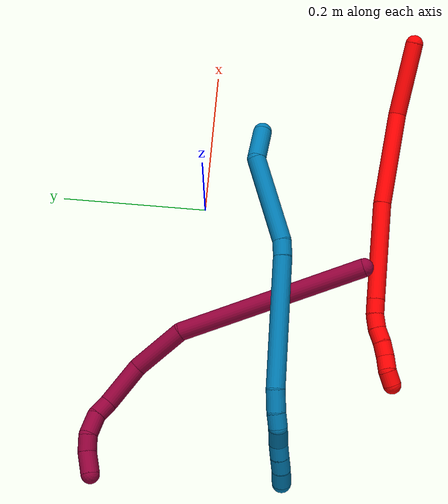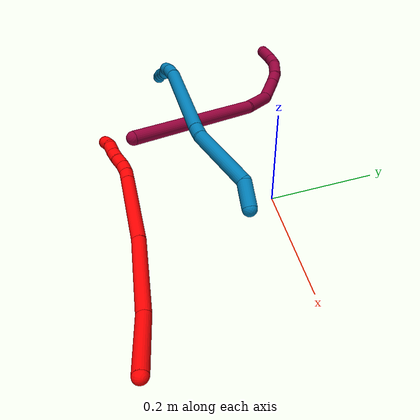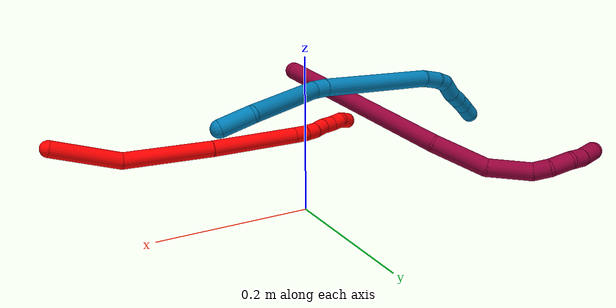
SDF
<sdf version="1.7">
 <world name="default">
  <model name="photoneo_s_sensor">
   <static>1</static>
   <pose>0 0 2 1.57079 1.57079 3.14159</pose>
   <link name="link">
    <inertial><mass>0.1</mass></inertial>
    <sensor name="sensor" type="depth">
     <update_rate>30</update_rate>
     <camera>
      <horizontal_fov>1.22</horizontal_fov>
      <image><width>1920</width><height>1200</height><format>B8G8R8</format></image>
      <clip><near>0.1</near><far>4</far></clip>
      <depth_camera><output>points</output></depth_camera>
     </camera>
     <plugin name="camera_plugin" filename="libgazebo_ros_depth_camera.so">
      <baseline>0.2</baseline>
      <alwaysOn>1</alwaysOn>
      <updateRate>0.0</updateRate>
      <cameraName>camera_ir</cameraName>
      <imageTopicName>/camera/color/image_raw</imageTopicName>
      <cameraInfoTopicName>/camera/color/camera_info</cameraInfoTopicName>
      <depthImageTopicName>/camera/depth/image_raw</depthImageTopicName>
      <depthImageCameraInfoTopicName>/camera/depth/camera_info</depthImageCameraInfoTopicName>
      <pointCloudTopicName>/camera/depth/points</pointCloudTopicName>
      <frameName>fr_optical</frameName>
      <pointCloudCutoff>0.1</pointCloudCutoff>
      <pointCloudCutoffMax>2.0</pointCloudCutoffMax>
      <distortionK1>0</distortionK1>
      <distortionK2>0</distortionK2>
      <distortionK3>0</distortionK3>
      <distortionT1>0</distortionT1>
      <distortionT2>0</distortionT2>
      <CxPrime>0</CxPrime>
      <Cx>0</Cx>
      <Cy>0</Cy>
      <focalLength>0</focalLength>
      <hackBaseline>0</hackBaseline>
     </plugin>
    </sensor>
   </link>
  </model>
  <model name="2">
   <static>0</static>
   <link name="2">
    <collision name="collision-cylinder-e_1_1_4">
     <pose>-0.016019 -0.033835 0.036101 0.753013 -0.313116 -0.124656</pose>
     <geometry><cylinder><radius>0.0125</radius><length>0.104014</length></cylinder></geometry>
     <surface>
      <friction><ode><mu>1.16</mu><mu2>1.16</mu2><slip1>0</slip1><slip2>0</slip2></ode></friction>
      <contact><ode><kp>1e+06</kp><kd>1</kd><max_vel>0</max_vel><min_depth>0.001</min_depth></ode></contact>
     </surface>
    </collision>
    <visual name="visual-cylinder-e_1_1_4">
     <pose>-0.016019 -0.033835 0.036101 0.753013 -0.313116 -0.124656</pose>
     <geometry><cylinder><radius>0.0125</radius><length>0.104014</length></cylinder></geometry>
     <material><ambient>1 0 0 1</ambient></material>
    </visual>
    <collision name="collision-cylinder-e_2_4_5">
     <pose>-0.071124 -0.105303 0.113143 0.743317 -0.61264 -0.245313</pose>
     <geometry><cylinder><radius>0.0125</radius><length>0.135943</length></cylinder></geometry>
     <surface>
      <friction><ode><mu>1.16</mu><mu2>1.16</mu2><slip1>0</slip1><slip2>0</slip2></ode></friction>
      <contact><ode><kp>1e+06</kp><kd>1</kd><max_vel>0</max_vel><min_depth>0.001</min_depth></ode></contact>
     </surface>
    </collision>
    <visual name="visual-cylinder-e_2_4_5">
     <pose>-0.071124 -0.105303 0.113143 0.743317 -0.61264 -0.245313</pose>
     <geometry><cylinder><radius>0.0125</radius><length>0.135943</length></cylinder></geometry>
     <material><ambient>1 0 0 1</ambient></material>
    </visual>
    <collision name="collision-cylinder-e_3_5_6">
     <pose>-0.150561 -0.176005 0.199774 0.6265 -0.621011 -0.207135</pose>
     <geometry><cylinder><radius>0.0125</radius><length>0.138697</length></cylinder></geometry>
     <surface>
      <friction><ode><mu>1.16</mu><mu2>1.16</mu2><slip1>0</slip1><slip2>0</slip2></ode></friction>
      <contact><ode><kp>1e+06</kp><kd>1</kd><max_vel>0</max_vel><min_depth>0.001</min_depth></ode></contact>
     </surface>
    </collision>
    <visual name="visual-cylinder-e_3_5_6">
     <pose>-0.150561 -0.176005 0.199774 0.6265 -0.621011 -0.207135</pose>
     <geometry><cylinder><radius>0.0125</radius><length>0.138697</length></cylinder></geometry>
     <material><ambient>1 0 0 1</ambient></material>
    </visual>
    <collision name="collision-cylinder-e_4_6_7">
     <pose>-0.197029 -0.213977 0.252345 0.619085 -0.626537 -0.206467</pose>
     <geometry><cylinder><radius>0.0125</radius><length>0.020864</length></cylinder></geometry>
     <surface>
      <friction><ode><mu>1.16</mu><mu2>1.16</mu2><slip1>0</slip1><slip2>0</slip2></ode></friction>
      <contact><ode><kp>1e+06</kp><kd>1</kd><max_vel>0</max_vel><min_depth>0.001</min_depth></ode></contact>
     </surface>
    </collision>
    <visual name="visual-cylinder-e_4_6_7">
     <pose>-0.197029 -0.213977 0.252345 0.619085 -0.626537 -0.206467</pose>
     <geometry><cylinder><radius>0.0125</radius><length>0.020864</length></cylinder></geometry>
     <material><ambient>1 0 0 1</ambient></material>
    </visual>
    <collision name="collision-cylinder-e_5_7_8">
     <pose>-0.209403 -0.221798 0.266757 0.369665 -0.659275 -0.127756</pose>
     <geometry><cylinder><radius>0.0125</radius><length>0.020433</length></cylinder></geometry>
     <surface>
      <friction><ode><mu>1.16</mu><mu2>1.16</mu2><slip1>0</slip1><slip2>0</slip2></ode></friction>
      <contact><ode><kp>1e+06</kp><kd>1</kd><max_vel>0</max_vel><min_depth>0.001</min_depth></ode></contact>
     </surface>
    </collision>
    <visual name="visual-cylinder-e_5_7_8">
     <pose>-0.209403 -0.221798 0.266757 0.369665 -0.659275 -0.127756</pose>
     <geometry><cylinder><radius>0.0125</radius><length>0.020433</length></cylinder></geometry>
     <material><ambient>1 0 0 1</ambient></material>
    </visual>
    <collision name="collision-cylinder-e_6_8_9">
     <pose>-0.222119 -0.225587 0.281877 0.114259 -0.701717 -0.041859</pose>
     <geometry><cylinder><radius>0.0125</radius><length>0.020005</length></cylinder></geometry>
     <surface>
      <friction><ode><mu>1.16</mu><mu2>1.16</mu2><slip1>0</slip1><slip2>0</slip2></ode></friction>
      <contact><ode><kp>1e+06</kp><kd>1</kd><max_vel>0</max_vel><min_depth>0.001</min_depth></ode></contact>
     </surface>
    </collision>
    <visual name="visual-cylinder-e_6_8_9">
     <pose>-0.222119 -0.225587 0.281877 0.114259 -0.701717 -0.041859</pose>
     <geometry><cylinder><radius>0.0125</radius><length>0.020005</length></cylinder></geometry>
     <material><ambient>1 0 0 1</ambient></material>
    </visual>
    <collision name="collision-cylinder-e_7_9_10">
     <pose>-0.234332 -0.228708 0.297354 0.277827 -0.611965 -0.088278</pose>
     <geometry><cylinder><radius>0.0125</radius><length>0.020043</length></cylinder></geometry>
     <surface>
      <friction><ode><mu>1.16</mu><mu2>1.16</mu2><slip1>0</slip1><slip2>0</slip2></ode></friction>
      <contact><ode><kp>1e+06</kp><kd>1</kd><max_vel>0</max_vel><min_depth>0.001</min_depth></ode></contact>
     </surface>
    </collision>
    <visual name="visual-cylinder-e_7_9_10">
     <pose>-0.234332 -0.228708 0.297354 0.277827 -0.611965 -0.088278</pose>
     <geometry><cylinder><radius>0.0125</radius><length>0.020043</length></cylinder></geometry>
     <material><ambient>1 0 0 1</ambient></material>
    </visual>
    <collision name="collision-cylinder-e_8_10_11">
     <pose>-0.246935 -0.233658 0.312014 0.379563 -0.753996 -0.151821</pose>
     <geometry><cylinder><radius>0.0125</radius><length>0.020001</length></cylinder></geometry>
     <surface>
      <friction><ode><mu>1.16</mu><mu2>1.16</mu2><slip1>0</slip1><slip2>0</slip2></ode></friction>
      <contact><ode><kp>1e+06</kp><kd>1</kd><max_vel>0</max_vel><min_depth>0.001</min_depth></ode></contact>
     </surface>
    </collision>
    <visual name="visual-cylinder-e_8_10_11">
     <pose>-0.246935 -0.233658 0.312014 0.379563 -0.753996 -0.151821</pose>
     <geometry><cylinder><radius>0.0125</radius><length>0.020001</length></cylinder></geometry>
     <material><ambient>1 0 0 1</ambient></material>
    </visual>
    <collision name="collision-cylinder-e_9_11_2">
     <pose>-0.256883 -0.237924 0.328162 0.165316 -0.315379 -0.026345</pose>
     <geometry><cylinder><radius>0.0125</radius><length>0.02</length></cylinder></geometry>
     <surface>
      <friction><ode><mu>1.16</mu><mu2>1.16</mu2><slip1>0</slip1><slip2>0</slip2></ode></friction>
      <contact><ode><kp>1e+06</kp><kd>1</kd><max_vel>0</max_vel><min_depth>0.001</min_depth></ode></contact>
     </surface>
    </collision>
    <visual name="visual-cylinder-e_9_11_2">
     <pose>-0.256883 -0.237924 0.328162 0.165316 -0.315379 -0.026345</pose>
     <geometry><cylinder><radius>0.0125</radius><length>0.02</length></cylinder></geometry>
     <material><ambient>1 0 0 1</ambient></material>
    </visual>
    <collision name="collision-sphere-2">
     <pose>-0.259985 -0.239488 0.33754 0 -0 0</pose>
     <geometry><sphere><radius>0.0125</radius></sphere></geometry>
     <surface>
      <friction><ode><mu>1.16</mu><mu2>1.16</mu2><slip1>0</slip1><slip2>0</slip2></ode></friction>
      <contact><ode><kp>1e+06</kp><kd>1</kd><max_vel>0</max_vel><min_depth>0.001</min_depth></ode></contact>
     </surface>
    </collision>
    <visual name="visual-sphere-2">
     <pose>-0.259985 -0.239488 0.33754 0 -0 0</pose>
     <geometry><sphere><radius>0.0125</radius></sphere></geometry>
     <material><ambient>1 0 0 1</ambient></material>
    </visual>
    <collision name="collision-sphere-11">
     <pose>-0.253781 -0.23636 0.318785 0 -0 0</pose>
     <geometry><sphere><radius>0.0125</radius></sphere></geometry>
     <surface>
      <friction><ode><mu>1.16</mu><mu2>1.16</mu2><slip1>0</slip1><slip2>0</slip2></ode></friction>
      <contact><ode><kp>1e+06</kp><kd>1</kd><max_vel>0</max_vel><min_depth>0.001</min_depth></ode></contact>
     </surface>
    </collision>
    <visual name="visual-sphere-11">
     <pose>-0.253781 -0.23636 0.318785 0 -0 0</pose>
     <geometry><sphere><radius>0.0125</radius></sphere></geometry>
     <material><ambient>1 0 0 1</ambient></material>
    </visual>
    <collision name="collision-sphere-10">
     <pose>-0.240089 -0.230957 0.305243 0 -0 0</pose>
     <geometry><sphere><radius>0.0125</radius></sphere></geometry>
     <surface>
      <friction><ode><mu>1.16</mu><mu2>1.16</mu2><slip1>0</slip1><slip2>0</slip2></ode></friction>
      <contact><ode><kp>1e+06</kp><kd>1</kd><max_vel>0</max_vel><min_depth>0.001</min_depth></ode></contact>
     </surface>
    </collision>
    <visual name="visual-sphere-10">
     <pose>-0.240089 -0.230957 0.305243 0 -0 0</pose>
     <geometry><sphere><radius>0.0125</radius></sphere></geometry>
     <material><ambient>1 0 0 1</ambient></material>
    </visual>
    <collision name="collision-sphere-9">
     <pose>-0.228575 -0.226458 0.289466 0 -0 0</pose>
     <geometry><sphere><radius>0.0125</radius></sphere></geometry>
     <surface>
      <friction><ode><mu>1.16</mu><mu2>1.16</mu2><slip1>0</slip1><slip2>0</slip2></ode></friction>
      <contact><ode><kp>1e+06</kp><kd>1</kd><max_vel>0</max_vel><min_depth>0.001</min_depth></ode></contact>
     </surface>
    </collision>
    <visual name="visual-sphere-9">
     <pose>-0.228575 -0.226458 0.289466 0 -0 0</pose>
     <geometry><sphere><radius>0.0125</radius></sphere></geometry>
     <material><ambient>1 0 0 1</ambient></material>
    </visual>
    <collision name="collision-sphere-4">
     <pose>-0.032039 -0.06767 0.072202 0 -0 0</pose>
     <geometry><sphere><radius>0.0125</radius></sphere></geometry>
     <surface>
      <friction><ode><mu>1.16</mu><mu2>1.16</mu2><slip1>0</slip1><slip2>0</slip2></ode></friction>
      <contact><ode><kp>1e+06</kp><kd>1</kd><max_vel>0</max_vel><min_depth>0.001</min_depth></ode></contact>
     </surface>
    </collision>
    <visual name="visual-sphere-4">
     <pose>-0.032039 -0.06767 0.072202 0 -0 0</pose>
     <geometry><sphere><radius>0.0125</radius></sphere></geometry>
     <material><ambient>1 0 0 1</ambient></material>
    </visual>
    <collision name="collision-sphere-1">
     <geometry><sphere><radius>0.0125</radius></sphere></geometry>
     <surface>
      <friction><ode><mu>1.16</mu><mu2>1.16</mu2><slip1>0</slip1><slip2>0</slip2></ode></friction>
      <contact><ode><kp>1e+06</kp><kd>1</kd><max_vel>0</max_vel><min_depth>0.001</min_depth></ode></contact>
     </surface>
    </collision>
    <visual name="visual-sphere-1">
     <geometry><sphere><radius>0.0125</radius></sphere></geometry>
     <material><ambient>1 0 0 1</ambient></material>
    </visual>
    <collision name="collision-sphere-8">
     <pose>-0.215662 -0.224716 0.274288 0 -0 0</pose>
     <geometry><sphere><radius>0.0125</radius></sphere></geometry>
     <surface>
      <friction><ode><mu>1.16</mu><mu2>1.16</mu2><slip1>0</slip1><slip2>0</slip2></ode></friction>
      <contact><ode><kp>1e+06</kp><kd>1</kd><max_vel>0</max_vel><min_depth>0.001</min_depth></ode></contact>
     </surface>
    </collision>
    <visual name="visual-sphere-8">
     <pose>-0.215662 -0.224716 0.274288 0 -0 0</pose>
     <geometry><sphere><radius>0.0125</radius></sphere></geometry>
     <material><ambient>1 0 0 1</ambient></material>
    </visual>
    <collision name="collision-sphere-5">
     <pose>-0.11021 -0.142936 0.154085 0 -0 0</pose>
     <geometry><sphere><radius>0.0125</radius></sphere></geometry>
     <surface>
      <friction><ode><mu>1.16</mu><mu2>1.16</mu2><slip1>0</slip1><slip2>0</slip2></ode></friction>
      <contact><ode><kp>1e+06</kp><kd>1</kd><max_vel>0</max_vel><min_depth>0.001</min_depth></ode></contact>
     </surface>
    </collision>
    <visual name="visual-sphere-5">
     <pose>-0.11021 -0.142936 0.154085 0 -0 0</pose>
     <geometry><sphere><radius>0.0125</radius></sphere></geometry>
     <material><ambient>1 0 0 1</ambient></material>
    </visual>
    <collision name="collision-sphere-6">
     <pose>-0.190912 -0.209073 0.245463 0 -0 0</pose>
     <geometry><sphere><radius>0.0125</radius></sphere></geometry>
     <surface>
      <friction><ode><mu>1.16</mu><mu2>1.16</mu2><slip1>0</slip1><slip2>0</slip2></ode></friction>
      <contact><ode><kp>1e+06</kp><kd>1</kd><max_vel>0</max_vel><min_depth>0.001</min_depth></ode></contact>
     </surface>
    </collision>
    <visual name="visual-sphere-6">
     <pose>-0.190912 -0.209073 0.245463 0 -0 0</pose>
     <geometry><sphere><radius>0.0125</radius></sphere></geometry>
     <material><ambient>1 0 0 1</ambient></material>
    </visual>
    <collision name="collision-sphere-7">
     <pose>-0.203145 -0.21888 0.259227 0 -0 0</pose>
     <geometry><sphere><radius>0.0125</radius></sphere></geometry>
     <surface>
      <friction><ode><mu>1.16</mu><mu2>1.16</mu2><slip1>0</slip1><slip2>0</slip2></ode></friction>
      <contact><ode><kp>1e+06</kp><kd>1</kd><max_vel>0</max_vel><min_depth>0.001</min_depth></ode></contact>
     </surface>
    </collision>
    <visual name="visual-sphere-7">
     <pose>-0.203145 -0.21888 0.259227 0 -0 0</pose>
     <geometry><sphere><radius>0.0125</radius></sphere></geometry>
     <material><ambient>1 0 0 1</ambient></material>
    </visual>
    <inertial>
     <pose>-0.119648 -0.139542 0.163925 0 -0 0</pose>
     <mass>0.5</mass>
     <inertia>
      <ixx>0.000338</ixx>
      <ixy>0</ixy>
      <ixz>0</ixz>
      <iyy>0.00034</iyy>
      <iyz>0</iyz>
      <izz>0.000611</izz>
     </inertia>
    </inertial>
   </link>
   <pose>0.260403 -0.275768 0.042769 2.65567 0.941581 0.108548</pose>
  </model>
  <model name="8">
   <static>0</static>
   <link name="8">
    <collision name="collision-cylinder-e_1_1_4">
     <pose>0.002347 0.086321 0.095457 -0.735183 0.018232 -0.007021</pose>
     <geometry><cylinder><radius>0.0125</radius><length>0.25744</length></cylinder></geometry>
     <surface>
      <friction><ode><mu>1.16</mu><mu2>1.16</mu2><slip1>0</slip1><slip2>0</slip2></ode></friction>
      <contact><ode><kp>1e+06</kp><kd>1</kd><max_vel>0</max_vel><min_depth>0.001</min_depth></ode></contact>
     </surface>
    </collision>
    <visual name="visual-cylinder-e_1_1_4">
     <pose>0.002347 0.086321 0.095457 -0.735183 0.018232 -0.007021</pose>
     <geometry><cylinder><radius>0.0125</radius><length>0.25744</length></cylinder></geometry>
     <material><ambient>0.584314 0 0.227451 1</ambient></material>
    </visual>
    <collision name="collision-cylinder-e_2_4_5">
     <pose>0.016599 0.191561 0.221642 -0.551849 0.318685 -0.090944</pose>
     <geometry><cylinder><radius>0.0125</radius><length>0.075998</length></cylinder></geometry>
     <surface>
      <friction><ode><mu>1.16</mu><mu2>1.16</mu2><slip1>0</slip1><slip2>0</slip2></ode></friction>
      <contact><ode><kp>1e+06</kp><kd>1</kd><max_vel>0</max_vel><min_depth>0.001</min_depth></ode></contact>
     </surface>
    </collision>
    <visual name="visual-cylinder-e_2_4_5">
     <pose>0.016599 0.191561 0.221642 -0.551849 0.318685 -0.090944</pose>
     <geometry><cylinder><radius>0.0125</radius><length>0.075998</length></cylinder></geometry>
     <material><ambient>0.584314 0 0.227451 1</ambient></material>
    </visual>
    <collision name="collision-cylinder-e_3_5_6">
     <pose>0.046848 0.227519 0.270193 -0.762979 0.639612 -0.264148</pose>
     <geometry><cylinder><radius>0.0125</radius><length>0.061464</length></cylinder></geometry>
     <surface>
      <friction><ode><mu>1.16</mu><mu2>1.16</mu2><slip1>0</slip1><slip2>0</slip2></ode></friction>
      <contact><ode><kp>1e+06</kp><kd>1</kd><max_vel>0</max_vel><min_depth>0.001</min_depth></ode></contact>
     </surface>
    </collision>
    <visual name="visual-cylinder-e_3_5_6">
     <pose>0.046848 0.227519 0.270193 -0.762979 0.639612 -0.264148</pose>
     <geometry><cylinder><radius>0.0125</radius><length>0.061464</length></cylinder></geometry>
     <material><ambient>0.584314 0 0.227451 1</ambient></material>
    </visual>
    <collision name="collision-cylinder-e_4_6_7">
     <pose>0.072464 0.253218 0.291381 -1.20004 0.66418 -0.46341</pose>
     <geometry><cylinder><radius>0.0125</radius><length>0.023596</length></cylinder></geometry>
     <surface>
      <friction><ode><mu>1.16</mu><mu2>1.16</mu2><slip1>0</slip1><slip2>0</slip2></ode></friction>
      <contact><ode><kp>1e+06</kp><kd>1</kd><max_vel>0</max_vel><min_depth>0.001</min_depth></ode></contact>
     </surface>
    </collision>
    <visual name="visual-cylinder-e_4_6_7">
     <pose>0.072464 0.253218 0.291381 -1.20004 0.66418 -0.46341</pose>
     <geometry><cylinder><radius>0.0125</radius><length>0.023596</length></cylinder></geometry>
     <material><ambient>0.584314 0 0.227451 1</ambient></material>
    </visual>
    <collision name="collision-cylinder-e_5_7_8">
     <pose>0.092329 0.269077 0.297571 -1.19696 1.02 -0.728794</pose>
     <geometry><cylinder><radius>0.0125</radius><length>0.029556</length></cylinder></geometry>
     <surface>
      <friction><ode><mu>1.16</mu><mu2>1.16</mu2><slip1>0</slip1><slip2>0</slip2></ode></friction>
      <contact><ode><kp>1e+06</kp><kd>1</kd><max_vel>0</max_vel><min_depth>0.001</min_depth></ode></contact>
     </surface>
    </collision>
    <visual name="visual-cylinder-e_5_7_8">
     <pose>0.092329 0.269077 0.297571 -1.19696 1.02 -0.728794</pose>
     <geometry><cylinder><radius>0.0125</radius><length>0.029556</length></cylinder></geometry>
     <material><ambient>0.584314 0 0.227451 1</ambient></material>
    </visual>
    <collision name="collision-cylinder-e_6_8_9">
     <pose>0.115466 0.27736 0.303697 -0.316968 1.25252 -0.230213</pose>
     <geometry><cylinder><radius>0.0125</radius><length>0.022205</length></cylinder></geometry>
     <surface>
      <friction><ode><mu>1.16</mu><mu2>1.16</mu2><slip1>0</slip1><slip2>0</slip2></ode></friction>
      <contact><ode><kp>1e+06</kp><kd>1</kd><max_vel>0</max_vel><min_depth>0.001</min_depth></ode></contact>
     </surface>
    </collision>
    <visual name="visual-cylinder-e_6_8_9">
     <pose>0.115466 0.27736 0.303697 -0.316968 1.25252 -0.230213</pose>
     <geometry><cylinder><radius>0.0125</radius><length>0.022205</length></cylinder></geometry>
     <material><ambient>0.584314 0 0.227451 1</ambient></material>
    </visual>
    <collision name="collision-cylinder-e_7_9_2">
     <pose>0.14078 0.278229 0.308723 0.123382 1.45362 0.109739</pose>
     <geometry><cylinder><radius>0.0125</radius><length>0.029741</length></cylinder></geometry>
     <surface>
      <friction><ode><mu>1.16</mu><mu2>1.16</mu2><slip1>0</slip1><slip2>0</slip2></ode></friction>
      <contact><ode><kp>1e+06</kp><kd>1</kd><max_vel>0</max_vel><min_depth>0.001</min_depth></ode></contact>
     </surface>
    </collision>
    <visual name="visual-cylinder-e_7_9_2">
     <pose>0.14078 0.278229 0.308723 0.123382 1.45362 0.109739</pose>
     <geometry><cylinder><radius>0.0125</radius><length>0.029741</length></cylinder></geometry>
     <material><ambient>0.584314 0 0.227451 1</ambient></material>
    </visual>
    <collision name="collision-sphere-2">
     <pose>0.155549 0.278015 0.310448 0 -0 0</pose>
     <geometry><sphere><radius>0.0125</radius></sphere></geometry>
     <surface>
      <friction><ode><mu>1.16</mu><mu2>1.16</mu2><slip1>0</slip1><slip2>0</slip2></ode></friction>
      <contact><ode><kp>1e+06</kp><kd>1</kd><max_vel>0</max_vel><min_depth>0.001</min_depth></ode></contact>
     </surface>
    </collision>
    <visual name="visual-sphere-2">
     <pose>0.155549 0.278015 0.310448 0 -0 0</pose>
     <geometry><sphere><radius>0.0125</radius></sphere></geometry>
     <material><ambient>0.584314 0 0.227451 1</ambient></material>
    </visual>
    <collision name="collision-sphere-9">
     <pose>0.126011 0.278443 0.306998 0 -0 0</pose>
     <geometry><sphere><radius>0.0125</radius></sphere></geometry>
     <surface>
      <friction><ode><mu>1.16</mu><mu2>1.16</mu2><slip1>0</slip1><slip2>0</slip2></ode></friction>
      <contact><ode><kp>1e+06</kp><kd>1</kd><max_vel>0</max_vel><min_depth>0.001</min_depth></ode></contact>
     </surface>
    </collision>
    <visual name="visual-sphere-9">
     <pose>0.126011 0.278443 0.306998 0 -0 0</pose>
     <geometry><sphere><radius>0.0125</radius></sphere></geometry>
     <material><ambient>0.584314 0 0.227451 1</ambient></material>
    </visual>
    <collision name="collision-sphere-4">
     <pose>0.004693 0.172642 0.190914 0 -0 0</pose>
     <geometry><sphere><radius>0.0125</radius></sphere></geometry>
     <surface>
      <friction><ode><mu>1.16</mu><mu2>1.16</mu2><slip1>0</slip1><slip2>0</slip2></ode></friction>
      <contact><ode><kp>1e+06</kp><kd>1</kd><max_vel>0</max_vel><min_depth>0.001</min_depth></ode></contact>
     </surface>
    </collision>
    <visual name="visual-sphere-4">
     <pose>0.004693 0.172642 0.190914 0 -0 0</pose>
     <geometry><sphere><radius>0.0125</radius></sphere></geometry>
     <material><ambient>0.584314 0 0.227451 1</ambient></material>
    </visual>
    <collision name="collision-sphere-1">
     <geometry><sphere><radius>0.0125</radius></sphere></geometry>
     <surface>
      <friction><ode><mu>1.16</mu><mu2>1.16</mu2><slip1>0</slip1><slip2>0</slip2></ode></friction>
      <contact><ode><kp>1e+06</kp><kd>1</kd><max_vel>0</max_vel><min_depth>0.001</min_depth></ode></contact>
     </surface>
    </collision>
    <visual name="visual-sphere-1">
     <geometry><sphere><radius>0.0125</radius></sphere></geometry>
     <material><ambient>0.584314 0 0.227451 1</ambient></material>
    </visual>
    <collision name="collision-sphere-8">
     <pose>0.104921 0.276277 0.300396 0 -0 0</pose>
     <geometry><sphere><radius>0.0125</radius></sphere></geometry>
     <surface>
      <friction><ode><mu>1.16</mu><mu2>1.16</mu2><slip1>0</slip1><slip2>0</slip2></ode></friction>
      <contact><ode><kp>1e+06</kp><kd>1</kd><max_vel>0</max_vel><min_depth>0.001</min_depth></ode></contact>
     </surface>
    </collision>
    <visual name="visual-sphere-8">
     <pose>0.104921 0.276277 0.300396 0 -0 0</pose>
     <geometry><sphere><radius>0.0125</radius></sphere></geometry>
     <material><ambient>0.584314 0 0.227451 1</ambient></material>
    </visual>
    <collision name="collision-sphere-5">
     <pose>0.028505 0.210479 0.252371 0 -0 0</pose>
     <geometry><sphere><radius>0.0125</radius></sphere></geometry>
     <surface>
      <friction><ode><mu>1.16</mu><mu2>1.16</mu2><slip1>0</slip1><slip2>0</slip2></ode></friction>
      <contact><ode><kp>1e+06</kp><kd>1</kd><max_vel>0</max_vel><min_depth>0.001</min_depth></ode></contact>
     </surface>
    </collision>
    <visual name="visual-sphere-5">
     <pose>0.028505 0.210479 0.252371 0 -0 0</pose>
     <geometry><sphere><radius>0.0125</radius></sphere></geometry>
     <material><ambient>0.584314 0 0.227451 1</ambient></material>
    </visual>
    <collision name="collision-sphere-6">
     <pose>0.065192 0.244559 0.288015 0 -0 0</pose>
     <geometry><sphere><radius>0.0125</radius></sphere></geometry>
     <surface>
      <friction><ode><mu>1.16</mu><mu2>1.16</mu2><slip1>0</slip1><slip2>0</slip2></ode></friction>
      <contact><ode><kp>1e+06</kp><kd>1</kd><max_vel>0</max_vel><min_depth>0.001</min_depth></ode></contact>
     </surface>
    </collision>
    <visual name="visual-sphere-6">
     <pose>0.065192 0.244559 0.288015 0 -0 0</pose>
     <geometry><sphere><radius>0.0125</radius></sphere></geometry>
     <material><ambient>0.584314 0 0.227451 1</ambient></material>
    </visual>
    <collision name="collision-sphere-7">
     <pose>0.079737 0.261877 0.294747 0 -0 0</pose>
     <geometry><sphere><radius>0.0125</radius></sphere></geometry>
     <surface>
      <friction><ode><mu>1.16</mu><mu2>1.16</mu2><slip1>0</slip1><slip2>0</slip2></ode></friction>
      <contact><ode><kp>1e+06</kp><kd>1</kd><max_vel>0</max_vel><min_depth>0.001</min_depth></ode></contact>
     </surface>
    </collision>
    <visual name="visual-sphere-7">
     <pose>0.079737 0.261877 0.294747 0 -0 0</pose>
     <geometry><sphere><radius>0.0125</radius></sphere></geometry>
     <material><ambient>0.584314 0 0.227451 1</ambient></material>
    </visual>
    <inertial>
     <pose>0.031869 0.158253 0.179243 0 -0 0</pose>
     <mass>0.5</mass>
     <inertia>
      <ixx>0.001482</ixx>
      <ixy>0</ixy>
      <ixz>0</ixz>
      <iyy>0.001124</iyy>
      <iyz>0</iyz>
      <izz>-0.001032</izz>
     </inertia>
    </inertial>
   </link>
   <pose>-0.098389 -0.217832 0.124749 2.55958 -0.183537 -2.8313</pose>
  </model>
  <model name="9">
   <static>0</static>
   <link name="9">
    <collision name="collision-cylinder-e_1_1_4">
     <pose>-0.012232 0.005355 -0.019078 -2.86793 -0.553069 2.23817</pose>
     <geometry><cylinder><radius>0.0125</radius><length>0.046573</length></cylinder></geometry>
     <surface>
      <friction><ode><mu>1.16</mu><mu2>1.16</mu2><slip1>0</slip1><slip2>0</slip2></ode></friction>
      <contact><ode><kp>1e+06</kp><kd>1</kd><max_vel>0</max_vel><min_depth>0.001</min_depth></ode></contact>
     </surface>
    </collision>
    <visual name="visual-cylinder-e_1_1_4">
     <pose>-0.012232 0.005355 -0.019078 -2.86793 -0.553069 2.23817</pose>
     <geometry><cylinder><radius>0.0125</radius><length>0.046573</length></cylinder></geometry>
     <material><ambient>0 0.490196 0.709804 1</ambient></material>
    </visual>
    <collision name="collision-cylinder-e_2_4_5">
     <pose>-0.076267 0.027117 -0.064153 -2.57863 -1.03521 2.20179</pose>
     <geometry><cylinder><radius>0.0125</radius><length>0.120474</length></cylinder></geometry>
     <surface>
      <friction><ode><mu>1.16</mu><mu2>1.16</mu2><slip1>0</slip1><slip2>0</slip2></ode></friction>
      <contact><ode><kp>1e+06</kp><kd>1</kd><max_vel>0</max_vel><min_depth>0.001</min_depth></ode></contact>
     </surface>
    </collision>
    <visual name="visual-cylinder-e_2_4_5">
     <pose>-0.076267 0.027117 -0.064153 -2.57863 -1.03521 2.20179</pose>
     <geometry><cylinder><radius>0.0125</radius><length>0.120474</length></cylinder></geometry>
     <material><ambient>0 0.490196 0.709804 1</ambient></material>
    </visual>
    <collision name="collision-cylinder-e_3_5_6">
     <pose>-0.136539 0.044652 -0.096582 -2.96795 -0.914034 2.79122</pose>
     <geometry><cylinder><radius>0.0125</radius><length>0.02139</length></cylinder></geometry>
     <surface>
      <friction><ode><mu>1.16</mu><mu2>1.16</mu2><slip1>0</slip1><slip2>0</slip2></ode></friction>
      <contact><ode><kp>1e+06</kp><kd>1</kd><max_vel>0</max_vel><min_depth>0.001</min_depth></ode></contact>
     </surface>
    </collision>
    <visual name="visual-cylinder-e_3_5_6">
     <pose>-0.136539 0.044652 -0.096582 -2.96795 -0.914034 2.79122</pose>
     <geometry><cylinder><radius>0.0125</radius><length>0.02139</length></cylinder></geometry>
     <material><ambient>0 0.490196 0.709804 1</ambient></material>
    </visual>
    <collision name="collision-cylinder-e_4_6_7">
     <pose>-0.211459 0.046071 -0.157971 -3.13629 -0.879773 3.13033</pose>
     <geometry><cylinder><radius>0.0125</radius><length>0.172463</length></cylinder></geometry>
     <surface>
      <friction><ode><mu>1.16</mu><mu2>1.16</mu2><slip1>0</slip1><slip2>0</slip2></ode></friction>
      <contact><ode><kp>1e+06</kp><kd>1</kd><max_vel>0</max_vel><min_depth>0.001</min_depth></ode></contact>
     </surface>
    </collision>
    <visual name="visual-cylinder-e_4_6_7">
     <pose>-0.211459 0.046071 -0.157971 -3.13629 -0.879773 3.13033</pose>
     <geometry><cylinder><radius>0.0125</radius><length>0.172463</length></cylinder></geometry>
     <material><ambient>0 0.490196 0.709804 1</ambient></material>
    </visual>
    <collision name="collision-cylinder-e_5_7_8">
     <pose>-0.290584 0.044831 -0.22014 2.9323 -1.04393 -2.78035</pose>
     <geometry><cylinder><radius>0.0125</radius><length>0.029327</length></cylinder></geometry>
     <surface>
      <friction><ode><mu>1.16</mu><mu2>1.16</mu2><slip1>0</slip1><slip2>0</slip2></ode></friction>
      <contact><ode><kp>1e+06</kp><kd>1</kd><max_vel>0</max_vel><min_depth>0.001</min_depth></ode></contact>
     </surface>
    </collision>
    <visual name="visual-cylinder-e_5_7_8">
     <pose>-0.290584 0.044831 -0.22014 2.9323 -1.04393 -2.78035</pose>
     <geometry><cylinder><radius>0.0125</radius><length>0.029327</length></cylinder></geometry>
     <material><ambient>0 0.490196 0.709804 1</ambient></material>
    </visual>
    <collision name="collision-cylinder-e_6_8_9">
     <pose>-0.312566 0.041496 -0.230856 2.66631 -1.17029 -2.4406</pose>
     <geometry><cylinder><radius>0.0125</radius><length>0.020215</length></cylinder></geometry>
     <surface>
      <friction><ode><mu>1.16</mu><mu2>1.16</mu2><slip1>0</slip1><slip2>0</slip2></ode></friction>
      <contact><ode><kp>1e+06</kp><kd>1</kd><max_vel>0</max_vel><min_depth>0.001</min_depth></ode></contact>
     </surface>
    </collision>
    <visual name="visual-cylinder-e_6_8_9">
     <pose>-0.312566 0.041496 -0.230856 2.66631 -1.17029 -2.4406</pose>
     <geometry><cylinder><radius>0.0125</radius><length>0.020215</length></cylinder></geometry>
     <material><ambient>0 0.490196 0.709804 1</ambient></material>
    </visual>
    <collision name="collision-cylinder-e_7_9_10">
     <pose>-0.33258 0.031979 -0.235232 1.68331 -0.943456 -1.03769</pose>
     <geometry><cylinder><radius>0.0125</radius><length>0.026447</length></cylinder></geometry>
     <surface>
      <friction><ode><mu>1.16</mu><mu2>1.16</mu2><slip1>0</slip1><slip2>0</slip2></ode></friction>
      <contact><ode><kp>1e+06</kp><kd>1</kd><max_vel>0</max_vel><min_depth>0.001</min_depth></ode></contact>
     </surface>
    </collision>
    <visual name="visual-cylinder-e_7_9_10">
     <pose>-0.33258 0.031979 -0.235232 1.68331 -0.943456 -1.03769</pose>
     <geometry><cylinder><radius>0.0125</radius><length>0.026447</length></cylinder></geometry>
     <material><ambient>0 0.490196 0.709804 1</ambient></material>
    </visual>
    <collision name="collision-cylinder-e_8_10_11">
     <pose>-0.352471 0.020207 -0.238059 2.01978 -1.11472 -1.56291</pose>
     <geometry><cylinder><radius>0.0125</radius><length>0.020463</length></cylinder></geometry>
     <surface>
      <friction><ode><mu>1.16</mu><mu2>1.16</mu2><slip1>0</slip1><slip2>0</slip2></ode></friction>
      <contact><ode><kp>1e+06</kp><kd>1</kd><max_vel>0</max_vel><min_depth>0.001</min_depth></ode></contact>
     </surface>
    </collision>
    <visual name="visual-cylinder-e_8_10_11">
     <pose>-0.352471 0.020207 -0.238059 2.01978 -1.11472 -1.56291</pose>
     <geometry><cylinder><radius>0.0125</radius><length>0.020463</length></cylinder></geometry>
     <material><ambient>0 0.490196 0.709804 1</ambient></material>
    </visual>
    <collision name="collision-cylinder-e_9_11_12">
     <pose>-0.370874 0.011756 -0.24145 1.88666 -1.10622 -1.41048</pose>
     <geometry><cylinder><radius>0.0125</radius><length>0.020621</length></cylinder></geometry>
     <surface>
      <friction><ode><mu>1.16</mu><mu2>1.16</mu2><slip1>0</slip1><slip2>0</slip2></ode></friction>
      <contact><ode><kp>1e+06</kp><kd>1</kd><max_vel>0</max_vel><min_depth>0.001</min_depth></ode></contact>
     </surface>
    </collision>
    <visual name="visual-cylinder-e_9_11_12">
     <pose>-0.370874 0.011756 -0.24145 1.88666 -1.10622 -1.41048</pose>
     <geometry><cylinder><radius>0.0125</radius><length>0.020621</length></cylinder></geometry>
     <material><ambient>0 0.490196 0.709804 1</ambient></material>
    </visual>
    <collision name="collision-cylinder-e_10_12_2">
     <pose>-0.389367 0.001602 -0.244321 1.81493 -1.00128 -1.22164</pose>
     <geometry><cylinder><radius>0.0125</radius><length>0.022026</length></cylinder></geometry>
     <surface>
      <friction><ode><mu>1.16</mu><mu2>1.16</mu2><slip1>0</slip1><slip2>0</slip2></ode></friction>
      <contact><ode><kp>1e+06</kp><kd>1</kd><max_vel>0</max_vel><min_depth>0.001</min_depth></ode></contact>
     </surface>
    </collision>
    <visual name="visual-cylinder-e_10_12_2">
     <pose>-0.389367 0.001602 -0.244321 1.81493 -1.00128 -1.22164</pose>
     <geometry><cylinder><radius>0.0125</radius><length>0.022026</length></cylinder></geometry>
     <material><ambient>0 0.490196 0.709804 1</ambient></material>
    </visual>
    <collision name="collision-sphere-2">
     <pose>-0.398641 -0.00416 -0.245756 0 -0 0</pose>
     <geometry><sphere><radius>0.0125</radius></sphere></geometry>
     <surface>
      <friction><ode><mu>1.16</mu><mu2>1.16</mu2><slip1>0</slip1><slip2>0</slip2></ode></friction>
      <contact><ode><kp>1e+06</kp><kd>1</kd><max_vel>0</max_vel><min_depth>0.001</min_depth></ode></contact>
     </surface>
    </collision>
    <visual name="visual-sphere-2">
     <pose>-0.398641 -0.00416 -0.245756 0 -0 0</pose>
     <geometry><sphere><radius>0.0125</radius></sphere></geometry>
     <material><ambient>0 0.490196 0.709804 1</ambient></material>
    </visual>
    <collision name="collision-sphere-12">
     <pose>-0.380092 0.007365 -0.242885 0 -0 0</pose>
     <geometry><sphere><radius>0.0125</radius></sphere></geometry>
     <surface>
      <friction><ode><mu>1.16</mu><mu2>1.16</mu2><slip1>0</slip1><slip2>0</slip2></ode></friction>
      <contact><ode><kp>1e+06</kp><kd>1</kd><max_vel>0</max_vel><min_depth>0.001</min_depth></ode></contact>
     </surface>
    </collision>
    <visual name="visual-sphere-12">
     <pose>-0.380092 0.007365 -0.242885 0 -0 0</pose>
     <geometry><sphere><radius>0.0125</radius></sphere></geometry>
     <material><ambient>0 0.490196 0.709804 1</ambient></material>
    </visual>
    <collision name="collision-sphere-11">
     <pose>-0.361657 0.016147 -0.240015 0 -0 0</pose>
     <geometry><sphere><radius>0.0125</radius></sphere></geometry>
     <surface>
      <friction><ode><mu>1.16</mu><mu2>1.16</mu2><slip1>0</slip1><slip2>0</slip2></ode></friction>
      <contact><ode><kp>1e+06</kp><kd>1</kd><max_vel>0</max_vel><min_depth>0.001</min_depth></ode></contact>
     </surface>
    </collision>
    <visual name="visual-sphere-11">
     <pose>-0.361657 0.016147 -0.240015 0 -0 0</pose>
     <geometry><sphere><radius>0.0125</radius></sphere></geometry>
     <material><ambient>0 0.490196 0.709804 1</ambient></material>
    </visual>
    <collision name="collision-sphere-10">
     <pose>-0.343285 0.024266 -0.236103 0 -0 0</pose>
     <geometry><sphere><radius>0.0125</radius></sphere></geometry>
     <surface>
      <friction><ode><mu>1.16</mu><mu2>1.16</mu2><slip1>0</slip1><slip2>0</slip2></ode></friction>
      <contact><ode><kp>1e+06</kp><kd>1</kd><max_vel>0</max_vel><min_depth>0.001</min_depth></ode></contact>
     </surface>
    </collision>
    <visual name="visual-sphere-10">
     <pose>-0.343285 0.024266 -0.236103 0 -0 0</pose>
     <geometry><sphere><radius>0.0125</radius></sphere></geometry>
     <material><ambient>0 0.490196 0.709804 1</ambient></material>
    </visual>
    <collision name="collision-sphere-9">
     <pose>-0.321874 0.039692 -0.23436 0 -0 0</pose>
     <geometry><sphere><radius>0.0125</radius></sphere></geometry>
     <surface>
      <friction><ode><mu>1.16</mu><mu2>1.16</mu2><slip1>0</slip1><slip2>0</slip2></ode></friction>
      <contact><ode><kp>1e+06</kp><kd>1</kd><max_vel>0</max_vel><min_depth>0.001</min_depth></ode></contact>
     </surface>
    </collision>
    <visual name="visual-sphere-9">
     <pose>-0.321874 0.039692 -0.23436 0 -0 0</pose>
     <geometry><sphere><radius>0.0125</radius></sphere></geometry>
     <material><ambient>0 0.490196 0.709804 1</ambient></material>
    </visual>
    <collision name="collision-sphere-4">
     <pose>-0.024465 0.01071 -0.038155 0 -0 0</pose>
     <geometry><sphere><radius>0.0125</radius></sphere></geometry>
     <surface>
      <friction><ode><mu>1.16</mu><mu2>1.16</mu2><slip1>0</slip1><slip2>0</slip2></ode></friction>
      <contact><ode><kp>1e+06</kp><kd>1</kd><max_vel>0</max_vel><min_depth>0.001</min_depth></ode></contact>
     </surface>
    </collision>
    <visual name="visual-sphere-4">
     <pose>-0.024465 0.01071 -0.038155 0 -0 0</pose>
     <geometry><sphere><radius>0.0125</radius></sphere></geometry>
     <material><ambient>0 0.490196 0.709804 1</ambient></material>
    </visual>
    <collision name="collision-sphere-1">
     <geometry><sphere><radius>0.0125</radius></sphere></geometry>
     <surface>
      <friction><ode><mu>1.16</mu><mu2>1.16</mu2><slip1>0</slip1><slip2>0</slip2></ode></friction>
      <contact><ode><kp>1e+06</kp><kd>1</kd><max_vel>0</max_vel><min_depth>0.001</min_depth></ode></contact>
     </surface>
    </collision>
    <visual name="visual-sphere-1">
     <geometry><sphere><radius>0.0125</radius></sphere></geometry>
     <material><ambient>0 0.490196 0.709804 1</ambient></material>
    </visual>
    <collision name="collision-sphere-8">
     <pose>-0.303259 0.043299 -0.227352 0 -0 0</pose>
     <geometry><sphere><radius>0.0125</radius></sphere></geometry>
     <surface>
      <friction><ode><mu>1.16</mu><mu2>1.16</mu2><slip1>0</slip1><slip2>0</slip2></ode></friction>
      <contact><ode><kp>1e+06</kp><kd>1</kd><max_vel>0</max_vel><min_depth>0.001</min_depth></ode></contact>
     </surface>
    </collision>
    <visual name="visual-sphere-8">
     <pose>-0.303259 0.043299 -0.227352 0 -0 0</pose>
     <geometry><sphere><radius>0.0125</radius></sphere></geometry>
     <material><ambient>0 0.490196 0.709804 1</ambient></material>
    </visual>
    <collision name="collision-sphere-5">
     <pose>-0.128069 0.043524 -0.09015 0 -0 0</pose>
     <geometry><sphere><radius>0.0125</radius></sphere></geometry>
     <surface>
      <friction><ode><mu>1.16</mu><mu2>1.16</mu2><slip1>0</slip1><slip2>0</slip2></ode></friction>
      <contact><ode><kp>1e+06</kp><kd>1</kd><max_vel>0</max_vel><min_depth>0.001</min_depth></ode></contact>
     </surface>
    </collision>
    <visual name="visual-sphere-5">
     <pose>-0.128069 0.043524 -0.09015 0 -0 0</pose>
     <geometry><sphere><radius>0.0125</radius></sphere></geometry>
     <material><ambient>0 0.490196 0.709804 1</ambient></material>
    </visual>
    <collision name="collision-sphere-6">
     <pose>-0.145009 0.04578 -0.103014 0 -0 0</pose>
     <geometry><sphere><radius>0.0125</radius></sphere></geometry>
     <surface>
      <friction><ode><mu>1.16</mu><mu2>1.16</mu2><slip1>0</slip1><slip2>0</slip2></ode></friction>
      <contact><ode><kp>1e+06</kp><kd>1</kd><max_vel>0</max_vel><min_depth>0.001</min_depth></ode></contact>
     </surface>
    </collision>
    <visual name="visual-sphere-6">
     <pose>-0.145009 0.04578 -0.103014 0 -0 0</pose>
     <geometry><sphere><radius>0.0125</radius></sphere></geometry>
     <material><ambient>0 0.490196 0.709804 1</ambient></material>
    </visual>
    <collision name="collision-sphere-7">
     <pose>-0.277908 0.046363 -0.212928 0 -0 0</pose>
     <geometry><sphere><radius>0.0125</radius></sphere></geometry>
     <surface>
      <friction><ode><mu>1.16</mu><mu2>1.16</mu2><slip1>0</slip1><slip2>0</slip2></ode></friction>
      <contact><ode><kp>1e+06</kp><kd>1</kd><max_vel>0</max_vel><min_depth>0.001</min_depth></ode></contact>
     </surface>
    </collision>
    <visual name="visual-sphere-7">
     <pose>-0.277908 0.046363 -0.212928 0 -0 0</pose>
     <geometry><sphere><radius>0.0125</radius></sphere></geometry>
     <material><ambient>0 0.490196 0.709804 1</ambient></material>
    </visual>
    <inertial>
     <pose>-0.192441 0.032215 -0.141006 0 -0 0</pose>
     <mass>0.5</mass>
     <inertia>
      <ixx>-0.000292</ixx>
      <ixy>0</ixy>
      <ixz>0</ixz>
      <iyy>0.000651</iyy>
      <iyz>0</iyz>
      <izz>0.000421</izz>
     </inertia>
    </inertial>
   </link>
   <pose>0.085306 -0.071393 0.102243 1.99724 -0.398177 0.645481</pose>
  </model>
 </world>
</sdf>
